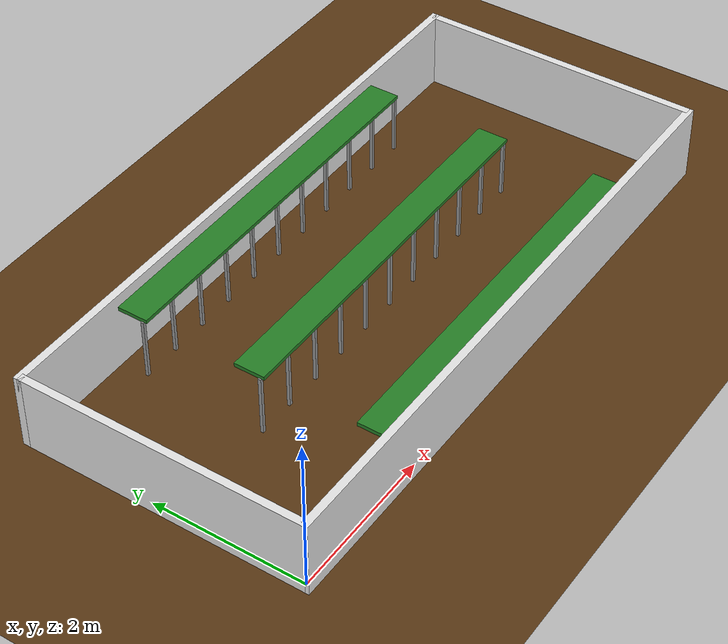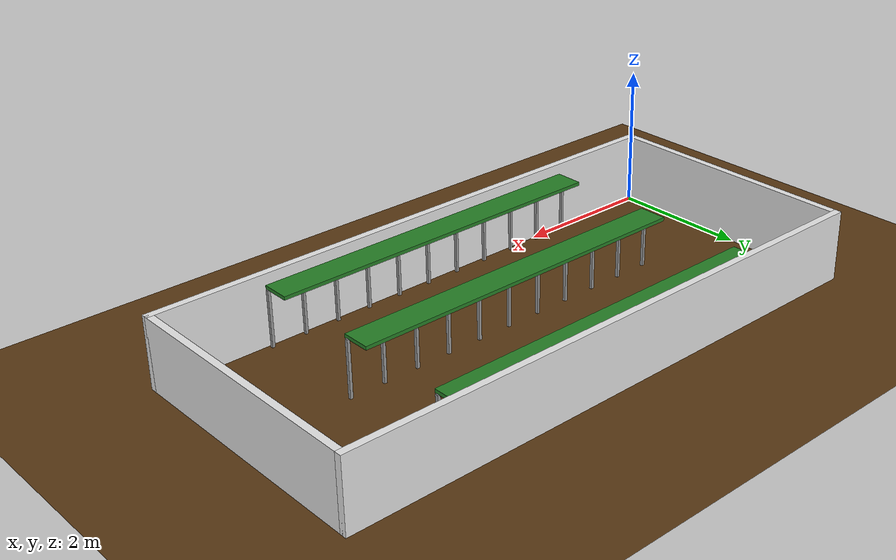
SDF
<?xml version="1.0"?>
<sdf version="1.6">
  <world name="greenhouse_2corridor">
    <!--
      통로 2개 환경 (베드 3개)
      베드 y: ['0.2', '1.8', '3.4']
      통로 y: ['1.00', '2.60']
      spawn:  x=3.0, y=1.00 (통로1 중앙)

      wall_left  y=-0.0500
      wall_right y=3.6500
    -->
    <include><uri>model://sun</uri></include>
    <physics type="ode">
      <real_time_update_rate>1000.0</real_time_update_rate>
      <max_step_size>0.001</max_step_size>
    </physics>

    <!-- 바닥 -->
    <model name="floor"><static>true</static><link name="link">
      <collision name="col"><geometry>
        <plane><normal>0 0 1</normal><size>20 20</size></plane>
      </geometry></collision>
      <visual name="vis"><geometry>
        <plane><normal>0 0 1</normal><size>20 20</size></plane>
      </geometry>
        <material>
          <ambient>0.35 0.22 0.08 1</ambient>
          <diffuse>0.35 0.22 0.08 1</diffuse>
        </material>
      </visual></link></model>

    <model name="wall_front"><static>true</static><pose>-0.0500 1.8000 0.5 0 0 0</pose><link name="link"><collision name="col"><geometry><box><size>0.1000 3.7000 1.0</size></box></geometry></collision><visual name="vis"><geometry><box><size>0.1000 3.7000 1.0</size></box></geometry><material><ambient>0.9 0.9 0.9 1</ambient></material></visual></link></model>
    <model name="wall_back"><static>true</static><pose>8.0500 1.8000 0.5 0 0 0</pose><link name="link"><collision name="col"><geometry><box><size>0.1000 3.7000 1.0</size></box></geometry></collision><visual name="vis"><geometry><box><size>0.1000 3.7000 1.0</size></box></geometry><material><ambient>0.9 0.9 0.9 1</ambient></material></visual></link></model>
    <model name="wall_left"><static>true</static><pose>4.0000 -0.0500 0.5 0 0 0</pose><link name="link"><collision name="col"><geometry><box><size>8.2000 0.1000 1.0</size></box></geometry></collision><visual name="vis"><geometry><box><size>8.2000 0.1000 1.0</size></box></geometry><material><ambient>0.9 0.9 0.9 1</ambient></material></visual></link></model>
    <model name="wall_right"><static>true</static><pose>4.0000 3.6500 0.5 0 0 0</pose><link name="link"><collision name="col"><geometry><box><size>8.2000 0.1000 1.0</size></box></geometry></collision><visual name="vis"><geometry><box><size>8.2000 0.1000 1.0</size></box></geometry><material><ambient>0.9 0.9 0.9 1</ambient></material></visual></link></model>

    <!-- ── 베드 1 (y=0.2) ── -->
    <model name="bed1_top"><static>true</static><pose>4.0 0.2000 0.82 0 0 0</pose><link name="link"><collision name="col"><geometry><box><size>5.0 0.4 0.05</size></box></geometry></collision><visual name="vis"><geometry><box><size>5.0 0.4 0.05</size></box></geometry><material><ambient>0.15 0.5 0.15 1</ambient><diffuse>0.15 0.5 0.15 1</diffuse></material></visual></link></model>
    <model name="bed1_col_1"><static>true</static><pose>1.5 0.0500 0.4 0 0 0</pose><link name="link"><collision name="col"><geometry><box><size>0.04 0.04 0.8</size></box></geometry></collision><visual name="vis"><geometry><box><size>0.04 0.04 0.8</size></box></geometry><material><ambient>0.6 0.6 0.6 1</ambient></material></visual></link></model>
    <model name="bed1_col_2"><static>true</static><pose>2.0 0.0500 0.4 0 0 0</pose><link name="link"><collision name="col"><geometry><box><size>0.04 0.04 0.8</size></box></geometry></collision><visual name="vis"><geometry><box><size>0.04 0.04 0.8</size></box></geometry><material><ambient>0.6 0.6 0.6 1</ambient></material></visual></link></model>
    <model name="bed1_col_3"><static>true</static><pose>2.5 0.0500 0.4 0 0 0</pose><link name="link"><collision name="col"><geometry><box><size>0.04 0.04 0.8</size></box></geometry></collision><visual name="vis"><geometry><box><size>0.04 0.04 0.8</size></box></geometry><material><ambient>0.6 0.6 0.6 1</ambient></material></visual></link></model>
    <model name="bed1_col_4"><static>true</static><pose>3.0 0.0500 0.4 0 0 0</pose><link name="link"><collision name="col"><geometry><box><size>0.04 0.04 0.8</size></box></geometry></collision><visual name="vis"><geometry><box><size>0.04 0.04 0.8</size></box></geometry><material><ambient>0.6 0.6 0.6 1</ambient></material></visual></link></model>
    <model name="bed1_col_5"><static>true</static><pose>3.5 0.0500 0.4 0 0 0</pose><link name="link"><collision name="col"><geometry><box><size>0.04 0.04 0.8</size></box></geometry></collision><visual name="vis"><geometry><box><size>0.04 0.04 0.8</size></box></geometry><material><ambient>0.6 0.6 0.6 1</ambient></material></visual></link></model>
    <model name="bed1_col_6"><static>true</static><pose>4.0 0.0500 0.4 0 0 0</pose><link name="link"><collision name="col"><geometry><box><size>0.04 0.04 0.8</size></box></geometry></collision><visual name="vis"><geometry><box><size>0.04 0.04 0.8</size></box></geometry><material><ambient>0.6 0.6 0.6 1</ambient></material></visual></link></model>
    <model name="bed1_col_7"><static>true</static><pose>4.5 0.0500 0.4 0 0 0</pose><link name="link"><collision name="col"><geometry><box><size>0.04 0.04 0.8</size></box></geometry></collision><visual name="vis"><geometry><box><size>0.04 0.04 0.8</size></box></geometry><material><ambient>0.6 0.6 0.6 1</ambient></material></visual></link></model>
    <model name="bed1_col_8"><static>true</static><pose>5.0 0.0500 0.4 0 0 0</pose><link name="link"><collision name="col"><geometry><box><size>0.04 0.04 0.8</size></box></geometry></collision><visual name="vis"><geometry><box><size>0.04 0.04 0.8</size></box></geometry><material><ambient>0.6 0.6 0.6 1</ambient></material></visual></link></model>
    <model name="bed1_col_9"><static>true</static><pose>5.5 0.0500 0.4 0 0 0</pose><link name="link"><collision name="col"><geometry><box><size>0.04 0.04 0.8</size></box></geometry></collision><visual name="vis"><geometry><box><size>0.04 0.04 0.8</size></box></geometry><material><ambient>0.6 0.6 0.6 1</ambient></material></visual></link></model>
    <model name="bed1_col_10"><static>true</static><pose>6.0 0.0500 0.4 0 0 0</pose><link name="link"><collision name="col"><geometry><box><size>0.04 0.04 0.8</size></box></geometry></collision><visual name="vis"><geometry><box><size>0.04 0.04 0.8</size></box></geometry><material><ambient>0.6 0.6 0.6 1</ambient></material></visual></link></model>
    <model name="bed1_col_11"><static>true</static><pose>6.5 0.0500 0.4 0 0 0</pose><link name="link"><collision name="col"><geometry><box><size>0.04 0.04 0.8</size></box></geometry></collision><visual name="vis"><geometry><box><size>0.04 0.04 0.8</size></box></geometry><material><ambient>0.6 0.6 0.6 1</ambient></material></visual></link></model>

    <!-- ── 베드 2 (y=1.8) ── -->
    <model name="bed2_top"><static>true</static><pose>4.0 1.8000 0.82 0 0 0</pose><link name="link"><collision name="col"><geometry><box><size>5.0 0.4 0.05</size></box></geometry></collision><visual name="vis"><geometry><box><size>5.0 0.4 0.05</size></box></geometry><material><ambient>0.15 0.5 0.15 1</ambient><diffuse>0.15 0.5 0.15 1</diffuse></material></visual></link></model>
    <model name="bed2_col_1"><static>true</static><pose>1.5 1.6500 0.4 0 0 0</pose><link name="link"><collision name="col"><geometry><box><size>0.04 0.04 0.8</size></box></geometry></collision><visual name="vis"><geometry><box><size>0.04 0.04 0.8</size></box></geometry><material><ambient>0.6 0.6 0.6 1</ambient></material></visual></link></model>
    <model name="bed2_col_2"><static>true</static><pose>2.0 1.6500 0.4 0 0 0</pose><link name="link"><collision name="col"><geometry><box><size>0.04 0.04 0.8</size></box></geometry></collision><visual name="vis"><geometry><box><size>0.04 0.04 0.8</size></box></geometry><material><ambient>0.6 0.6 0.6 1</ambient></material></visual></link></model>
    <model name="bed2_col_3"><static>true</static><pose>2.5 1.6500 0.4 0 0 0</pose><link name="link"><collision name="col"><geometry><box><size>0.04 0.04 0.8</size></box></geometry></collision><visual name="vis"><geometry><box><size>0.04 0.04 0.8</size></box></geometry><material><ambient>0.6 0.6 0.6 1</ambient></material></visual></link></model>
    <model name="bed2_col_4"><static>true</static><pose>3.0 1.6500 0.4 0 0 0</pose><link name="link"><collision name="col"><geometry><box><size>0.04 0.04 0.8</size></box></geometry></collision><visual name="vis"><geometry><box><size>0.04 0.04 0.8</size></box></geometry><material><ambient>0.6 0.6 0.6 1</ambient></material></visual></link></model>
    <model name="bed2_col_5"><static>true</static><pose>3.5 1.6500 0.4 0 0 0</pose><link name="link"><collision name="col"><geometry><box><size>0.04 0.04 0.8</size></box></geometry></collision><visual name="vis"><geometry><box><size>0.04 0.04 0.8</size></box></geometry><material><ambient>0.6 0.6 0.6 1</ambient></material></visual></link></model>
    <model name="bed2_col_6"><static>true</static><pose>4.0 1.6500 0.4 0 0 0</pose><link name="link"><collision name="col"><geometry><box><size>0.04 0.04 0.8</size></box></geometry></collision><visual name="vis"><geometry><box><size>0.04 0.04 0.8</size></box></geometry><material><ambient>0.6 0.6 0.6 1</ambient></material></visual></link></model>
    <model name="bed2_col_7"><static>true</static><pose>4.5 1.6500 0.4 0 0 0</pose><link name="link"><collision name="col"><geometry><box><size>0.04 0.04 0.8</size></box></geometry></collision><visual name="vis"><geometry><box><size>0.04 0.04 0.8</size></box></geometry><material><ambient>0.6 0.6 0.6 1</ambient></material></visual></link></model>
    <model name="bed2_col_8"><static>true</static><pose>5.0 1.6500 0.4 0 0 0</pose><link name="link"><collision name="col"><geometry><box><size>0.04 0.04 0.8</size></box></geometry></collision><visual name="vis"><geometry><box><size>0.04 0.04 0.8</size></box></geometry><material><ambient>0.6 0.6 0.6 1</ambient></material></visual></link></model>
    <model name="bed2_col_9"><static>true</static><pose>5.5 1.6500 0.4 0 0 0</pose><link name="link"><collision name="col"><geometry><box><size>0.04 0.04 0.8</size></box></geometry></collision><visual name="vis"><geometry><box><size>0.04 0.04 0.8</size></box></geometry><material><ambient>0.6 0.6 0.6 1</ambient></material></visual></link></model>
    <model name="bed2_col_10"><static>true</static><pose>6.0 1.6500 0.4 0 0 0</pose><link name="link"><collision name="col"><geometry><box><size>0.04 0.04 0.8</size></box></geometry></collision><visual name="vis"><geometry><box><size>0.04 0.04 0.8</size></box></geometry><material><ambient>0.6 0.6 0.6 1</ambient></material></visual></link></model>
    <model name="bed2_col_11"><static>true</static><pose>6.5 1.6500 0.4 0 0 0</pose><link name="link"><collision name="col"><geometry><box><size>0.04 0.04 0.8</size></box></geometry></collision><visual name="vis"><geometry><box><size>0.04 0.04 0.8</size></box></geometry><material><ambient>0.6 0.6 0.6 1</ambient></material></visual></link></model>

    <!-- ── 베드 3 (y=3.4) ── -->
    <model name="bed3_top"><static>true</static><pose>4.0 3.4000 0.82 0 0 0</pose><link name="link"><collision name="col"><geometry><box><size>5.0 0.4 0.05</size></box></geometry></collision><visual name="vis"><geometry><box><size>5.0 0.4 0.05</size></box></geometry><material><ambient>0.15 0.5 0.15 1</ambient><diffuse>0.15 0.5 0.15 1</diffuse></material></visual></link></model>
    <model name="bed3_col_1"><static>true</static><pose>1.5 3.2500 0.4 0 0 0</pose><link name="link"><collision name="col"><geometry><box><size>0.04 0.04 0.8</size></box></geometry></collision><visual name="vis"><geometry><box><size>0.04 0.04 0.8</size></box></geometry><material><ambient>0.6 0.6 0.6 1</ambient></material></visual></link></model>
    <model name="bed3_col_2"><static>true</static><pose>2.0 3.2500 0.4 0 0 0</pose><link name="link"><collision name="col"><geometry><box><size>0.04 0.04 0.8</size></box></geometry></collision><visual name="vis"><geometry><box><size>0.04 0.04 0.8</size></box></geometry><material><ambient>0.6 0.6 0.6 1</ambient></material></visual></link></model>
    <model name="bed3_col_3"><static>true</static><pose>2.5 3.2500 0.4 0 0 0</pose><link name="link"><collision name="col"><geometry><box><size>0.04 0.04 0.8</size></box></geometry></collision><visual name="vis"><geometry><box><size>0.04 0.04 0.8</size></box></geometry><material><ambient>0.6 0.6 0.6 1</ambient></material></visual></link></model>
    <model name="bed3_col_4"><static>true</static><pose>3.0 3.2500 0.4 0 0 0</pose><link name="link"><collision name="col"><geometry><box><size>0.04 0.04 0.8</size></box></geometry></collision><visual name="vis"><geometry><box><size>0.04 0.04 0.8</size></box></geometry><material><ambient>0.6 0.6 0.6 1</ambient></material></visual></link></model>
    <model name="bed3_col_5"><static>true</static><pose>3.5 3.2500 0.4 0 0 0</pose><link name="link"><collision name="col"><geometry><box><size>0.04 0.04 0.8</size></box></geometry></collision><visual name="vis"><geometry><box><size>0.04 0.04 0.8</size></box></geometry><material><ambient>0.6 0.6 0.6 1</ambient></material></visual></link></model>
    <model name="bed3_col_6"><static>true</static><pose>4.0 3.2500 0.4 0 0 0</pose><link name="link"><collision name="col"><geometry><box><size>0.04 0.04 0.8</size></box></geometry></collision><visual name="vis"><geometry><box><size>0.04 0.04 0.8</size></box></geometry><material><ambient>0.6 0.6 0.6 1</ambient></material></visual></link></model>
    <model name="bed3_col_7"><static>true</static><pose>4.5 3.2500 0.4 0 0 0</pose><link name="link"><collision name="col"><geometry><box><size>0.04 0.04 0.8</size></box></geometry></collision><visual name="vis"><geometry><box><size>0.04 0.04 0.8</size></box></geometry><material><ambient>0.6 0.6 0.6 1</ambient></material></visual></link></model>
    <model name="bed3_col_8"><static>true</static><pose>5.0 3.2500 0.4 0 0 0</pose><link name="link"><collision name="col"><geometry><box><size>0.04 0.04 0.8</size></box></geometry></collision><visual name="vis"><geometry><box><size>0.04 0.04 0.8</size></box></geometry><material><ambient>0.6 0.6 0.6 1</ambient></material></visual></link></model>
    <model name="bed3_col_9"><static>true</static><pose>5.5 3.2500 0.4 0 0 0</pose><link name="link"><collision name="col"><geometry><box><size>0.04 0.04 0.8</size></box></geometry></collision><visual name="vis"><geometry><box><size>0.04 0.04 0.8</size></box></geometry><material><ambient>0.6 0.6 0.6 1</ambient></material></visual></link></model>
    <model name="bed3_col_10"><static>true</static><pose>6.0 3.2500 0.4 0 0 0</pose><link name="link"><collision name="col"><geometry><box><size>0.04 0.04 0.8</size></box></geometry></collision><visual name="vis"><geometry><box><size>0.04 0.04 0.8</size></box></geometry><material><ambient>0.6 0.6 0.6 1</ambient></material></visual></link></model>
    <model name="bed3_col_11"><static>true</static><pose>6.5 3.2500 0.4 0 0 0</pose><link name="link"><collision name="col"><geometry><box><size>0.04 0.04 0.8</size></box></geometry></collision><visual name="vis"><geometry><box><size>0.04 0.04 0.8</size></box></geometry><material><ambient>0.6 0.6 0.6 1</ambient></material></visual></link></model>

  </world>
</sdf>
